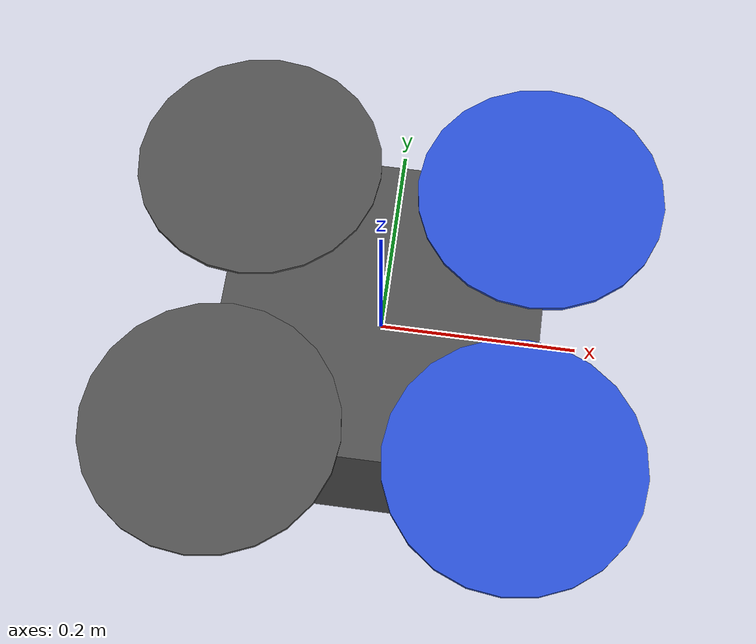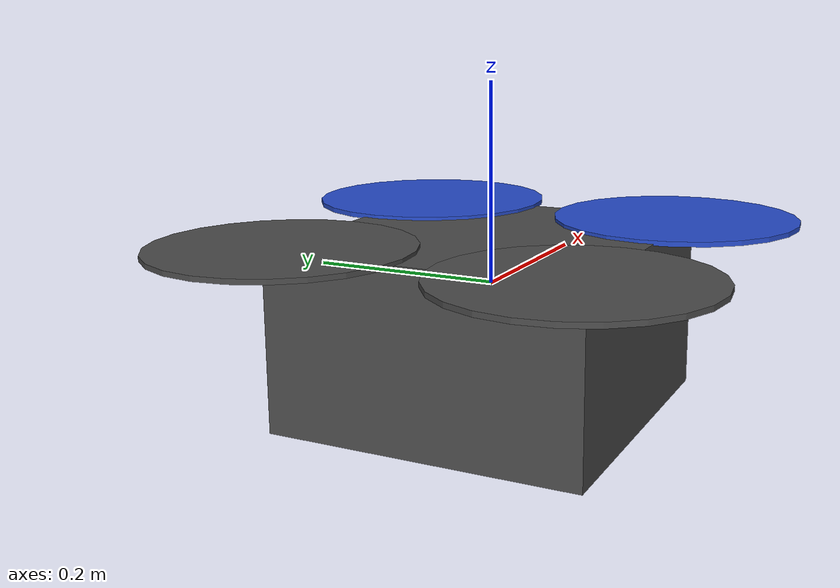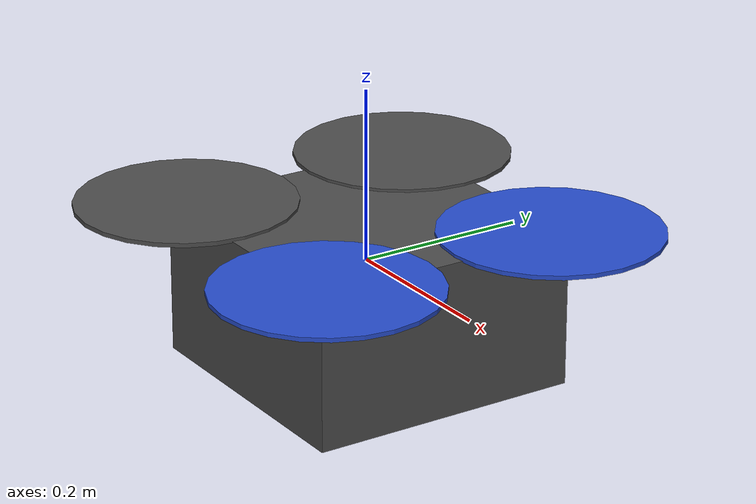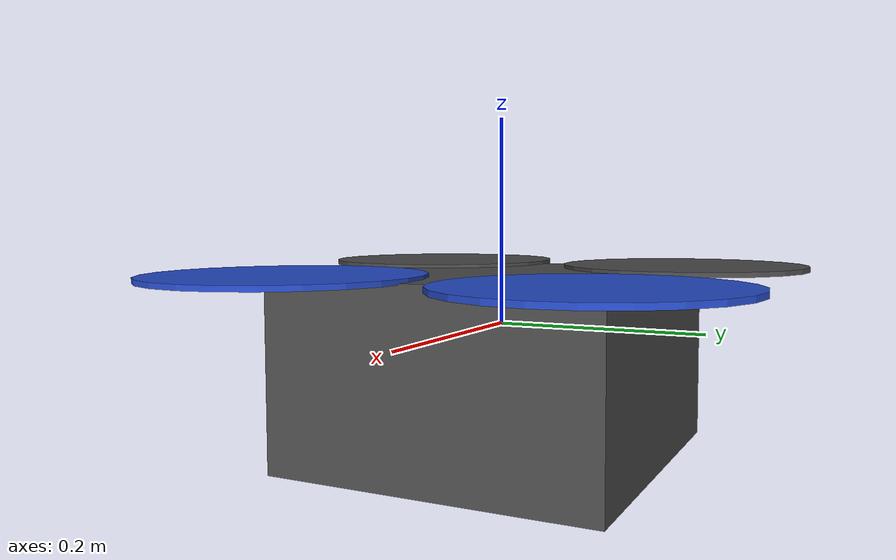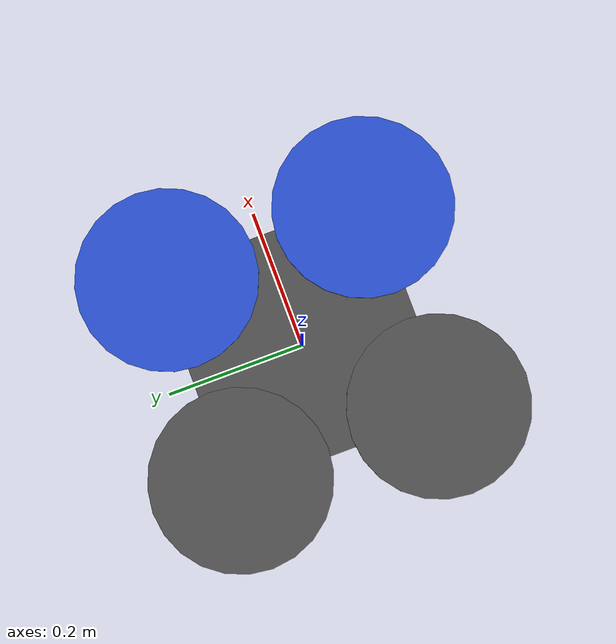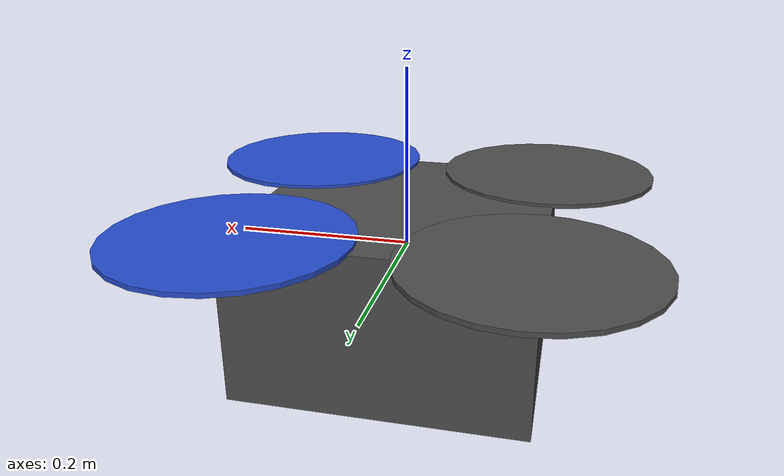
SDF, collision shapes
<?xml version="1.0" ?>
<sdf version="1.5">
  <model name='01_solo_Front_Down_D435i'>
    <include>
      <uri>model://solo</uri>
    </include>

   <include>
      <uri>model://realsense_camera</uri>
      <pose>0.14 0 0 1.57 0 1.57</pose>
    </include>

    <joint name="realsense_camera_joint" type="fixed">
      <child>realsense_camera::camera_link</child>
      <parent>solo::base_link</parent>
      <axis>
        <xyz>0 0 0</xyz>
        <limit>
          <upper>0</upper>
          <lower>0</lower>
        </limit>
      </axis>
    </joint>

    <!-- Repeating the use of the same Gazebo plugin can result in identical data between two models,
    so the second D435i camera was actually simulated using Kinect's plugin.-->

    <include>
      <uri>model://realsense_camera_2</uri>
      <pose>0 0 -0.05 3.14 0 1.57</pose>
    </include>

    <joint name="realsense_camera_joint_2" type="fixed">
      <child>realsense_camera_2::camera_link</child>
      <parent>solo::base_link</parent>
      <axis>
        <xyz>0 0 0</xyz>
        <limit>
          <upper>0</upper>
          <lower>0</lower>
        </limit>
      </axis>
    </joint>

  </model>
</sdf>

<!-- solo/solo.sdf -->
<sdf version='1.5'>
  <model name='solo'>
    <!-- Solo body -->
    <link name='base_link'>
      <pose>0 0 0 0 0 0</pose>
      <inertial>
        <pose>0 0 0 0 0 0</pose>
        <mass>1.47</mass>
        <inertia>
          <ixx>0.011</ixx>
          <ixy>0</ixy>
          <ixz>0</ixz>
          <iyy>0.015</iyy>
          <iyz>0</iyz>
          <izz>0.021</izz>
        </inertia>
      </inertial>
      <collision name='base_link_inertia_collision'>
        <pose>0 0 -0.04 0 0 0</pose>
        <geometry>
          <box>
            <size>0.32 0.32 0.18</size>
          </box>
        </geometry>
        <surface>
          <contact>
            <ode>
              <min_depth>0.001</min_depth>
              <max_vel>0</max_vel>
            </ode>
          </contact>
          <friction>
            <ode/>
          </friction>
        </surface>
      </collision>
      <visual name='base_link_inertia_visual'>
        <pose>0 0 0 0 0 0</pose>
        <geometry>
          <mesh>
            <scale>1 1 1</scale>
            <uri>model://solo/meshes/solo.stl</uri>
          </mesh>
        </geometry>
        <material>
          <script>
            <name>Gazebo/DarkGrey</name>
            <uri>file://media/materials/scripts/gazebo.material</uri>
          </script>
        </material>
      </visual>
      <gravity>1</gravity>
      <velocity_decay/>
      <self_collide>0</self_collide>
    </link>
    <link name='imu_link'>
      <pose>0 0 0 0 0 0</pose>
      <inertial>
        <pose>0 0 0 0 0 0</pose>
        <mass>0.015</mass>
        <inertia>
          <ixx>1e-05</ixx>
          <ixy>0</ixy>
          <ixz>0</ixz>
          <iyy>1e-05</iyy>
          <iyz>0</iyz>
          <izz>1e-05</izz>
        </inertia>
      </inertial>
    </link>
    <joint name='imu_joint' type='revolute'>
      <child>imu_link</child>
      <parent>base_link</parent>
      <axis>
        <xyz>1 0 0</xyz>
        <limit>
          <lower>0</lower>
          <upper>0</upper>
          <effort>0</effort>
          <velocity>0</velocity>
        </limit>
        <dynamics>
          <spring_reference>0</spring_reference>
          <spring_stiffness>0</spring_stiffness>
        </dynamics>
        <use_parent_model_frame>1</use_parent_model_frame>
      </axis>
    </joint>
    <link name='rotor_0'>
      <pose>0.14745 -0.14525 0.051 0 0 0</pose>
      <inertial>
        <pose>0 0 0 0 0 0</pose>
        <mass>0.005</mass>
        <inertia>
          <ixx>9.75e-07</ixx>
          <ixy>0</ixy>
          <ixz>0</ixz>
          <iyy>0.000273104</iyy>
          <iyz>0</iyz>
          <izz>0.000274004</izz>
        </inertia>
      </inertial>
      <collision name='rotor_0_collision'>
        <pose>0 0 0 0 0 0</pose>
        <geometry>
          <cylinder>
            <length>0.005</length>
            <radius>0.128</radius>
          </cylinder>
        </geometry>
        <surface>
          <contact>
            <ode/>
          </contact>
          <friction>
            <ode/>
          </friction>
        </surface>
      </collision>
      <visual name='rotor_0_visual'>
        <pose>-0.14745 -0.14525 -0.051 0 0 0</pose>
        <geometry>
          <mesh>
            <scale>1 1 1</scale>
            <uri>model://solo/meshes/solo_prop_ccw.stl</uri>
          </mesh>
        </geometry>
        <material>
          <script>
            <name>Gazebo/Blue</name>
            <uri>file://media/materials/scripts/gazebo.material</uri>
          </script>
        </material>
      </visual>
      <gravity>1</gravity>
      <velocity_decay/>
      <self_collide>0</self_collide>
    </link>
    <joint name='rotor_0_joint' type='revolute'>
      <child>rotor_0</child>
      <parent>base_link</parent>
      <axis>
        <xyz>0 0 1</xyz>
        <limit>
          <lower>-1e+16</lower>
          <upper>1e+16</upper>
        </limit>
        <dynamics>
          <spring_reference>0</spring_reference>
          <spring_stiffness>0</spring_stiffness>
        </dynamics>
        <use_parent_model_frame>1</use_parent_model_frame>
      </axis>
    </joint>
    <link name='rotor_1'>
      <pose>-0.14745 0.14525 0.051 0 0 0</pose>
      <inertial>
        <pose>0 0 0 0 0 0</pose>
        <mass>0.005</mass>
        <inertia>
          <ixx>9.75e-07</ixx>
          <ixy>0</ixy>
          <ixz>0</ixz>
          <iyy>0.000273104</iyy>
          <iyz>0</iyz>
          <izz>0.000274004</izz>
        </inertia>
      </inertial>
      <collision name='rotor_1_collision'>
        <pose>0 0 0 0 0 0</pose>
        <geometry>
          <cylinder>
            <length>0.005</length>
            <radius>0.128</radius>
          </cylinder>
        </geometry>
        <surface>
          <contact>
            <ode/>
          </contact>
          <friction>
            <ode/>
          </friction>
        </surface>
      </collision>
      <visual name='rotor_1_visual'>
        <pose>-0.14745 -0.14525 -0.051 0 0 0</pose>
        <geometry>
          <mesh>
            <scale>1 1 1</scale>
            <uri>model://solo/meshes/solo_prop_ccw.stl</uri>
          </mesh>
        </geometry>
        <material>
          <script>
            <name>Gazebo/DarkGrey</name>
            <uri>file://media/materials/scripts/gazebo.material</uri>
          </script>
        </material>
      </visual>
      <gravity>1</gravity>
      <velocity_decay/>
      <self_collide>0</self_collide>
    </link>
    <joint name='rotor_1_joint' type='revolute'>
      <child>rotor_1</child>
      <parent>base_link</parent>
      <axis>
        <xyz>0 0 1</xyz>
        <limit>
          <lower>-1e+16</lower>
          <upper>1e+16</upper>
        </limit>
        <dynamics>
          <spring_reference>0</spring_reference>
          <spring_stiffness>0</spring_stiffness>
        </dynamics>
        <use_parent_model_frame>1</use_parent_model_frame>
      </axis>
    </joint>
    <link name='rotor_2'>
      <pose>0.14745 0.14525 0.051 0 0 0</pose>
      <inertial>
        <pose>0 0 0 0 0 0</pose>
        <mass>0.005</mass>
        <inertia>
          <ixx>9.75e-07</ixx>
          <ixy>0</ixy>
          <ixz>0</ixz>
          <iyy>0.000273104</iyy>
          <iyz>0</iyz>
          <izz>0.000274004</izz>
        </inertia>
      </inertial>
      <collision name='rotor_2_collision'>
        <pose>0 0 0 0 0 0</pose>
        <geometry>
          <cylinder>
            <length>0.005</length>
            <radius>0.128</radius>
          </cylinder>
        </geometry>
        <surface>
          <contact>
            <ode/>
          </contact>
          <friction>
            <ode/>
          </friction>
        </surface>
      </collision>
      <visual name='rotor_2_visual'>
        <pose>-0.14745 0.14525 -0.051 0 0 0</pose>
        <geometry>
          <mesh>
            <scale>1 1 1</scale>
            <uri>model://solo/meshes/solo_prop_cw.stl</uri>
          </mesh>
        </geometry>
        <material>
          <script>
            <name>Gazebo/Blue</name>
            <uri>file://media/materials/scripts/gazebo.material</uri>
          </script>
        </material>
      </visual>
      <gravity>1</gravity>
      <velocity_decay/>
      <self_collide>0</self_collide>
    </link>
    <joint name='rotor_2_joint' type='revolute'>
      <child>rotor_2</child>
      <parent>base_link</parent>
      <axis>
        <xyz>0 0 1</xyz>
        <limit>
          <lower>-1e+16</lower>
          <upper>1e+16</upper>
        </limit>
        <dynamics>
          <spring_reference>0</spring_reference>
          <spring_stiffness>0</spring_stiffness>
        </dynamics>
        <use_parent_model_frame>1</use_parent_model_frame>
      </axis>
    </joint>
    <link name='rotor_3'>
      <pose>-0.14745 -0.14525 0.051 0 0 0</pose>
      <inertial>
        <pose>0 0 0 0 0 0</pose>
        <mass>0.005</mass>
        <inertia>
          <ixx>9.75e-07</ixx>
          <ixy>0</ixy>
          <ixz>0</ixz>
          <iyy>0.000273104</iyy>
          <iyz>0</iyz>
          <izz>0.000274004</izz>
        </inertia>
      </inertial>
      <collision name='rotor_3_collision'>
        <pose>0 0 0 0 0 0</pose>
        <geometry>
          <cylinder>
            <length>0.005</length>
            <radius>0.128</radius>
          </cylinder>
        </geometry>
        <surface>
          <contact>
            <ode/>
          </contact>
          <friction>
            <ode/>
          </friction>
        </surface>
      </collision>
      <visual name='rotor_3_visual'>
        <pose>-0.14745 0.14525 -0.051 0 0 0</pose>
        <geometry>
          <mesh>
            <scale>1 1 1</scale>
            <uri>model://solo/meshes/solo_prop_cw.stl</uri>
          </mesh>
        </geometry>
        <material>
          <script>
            <name>Gazebo/DarkGrey</name>
            <uri>file://media/materials/scripts/gazebo.material</uri>
          </script>
        </material>
      </visual>
      <gravity>1</gravity>
      <velocity_decay/>
      <self_collide>0</self_collide>
    </link>
    <joint name='rotor_3_joint' type='revolute'>
      <child>rotor_3</child>
      <parent>base_link</parent>
      <axis>
        <xyz>0 0 1</xyz>
        <limit>
          <lower>-1e+16</lower>
          <upper>1e+16</upper>
        </limit>
        <dynamics>
          <spring_reference>0</spring_reference>
          <spring_stiffness>0</spring_stiffness>
        </dynamics>
        <use_parent_model_frame>1</use_parent_model_frame>
      </axis>
    </joint>
    <include>
      <uri>model://gps</uri>
      <pose>0 0 0 0 0 0</pose>
      <name>gps</name>
    </include>
    <joint name='gps_joint' type='fixed'>
      <child>gps::link</child>
      <parent>base_link</parent>
    </joint>

    <plugin name="gps" filename="libhector_gazebo_ros_gps.so">
      <updateRate>10.0</updateRate>
      <topicName>sensor_msgs/NavSatFix</topicName>
      <gaussianNoise>0.0 0.0 0.0</gaussianNoise>
      <offset>0 0 0</offset>
      <velocityGaussianNoise>0 0 0</velocityGaussianNoise>
      <frameId>gps::link</frameId>
    </plugin>

    <plugin name='rosbag' filename='libgazebo_multirotor_base_plugin.so'>
      <robotNamespace></robotNamespace>
      <linkName>base_link</linkName>
      <rotorVelocitySlowdownSim>10</rotorVelocitySlowdownSim>
    </plugin>
    <plugin name='front_right_motor_model' filename='libgazebo_motor_model.so'>
      <robotNamespace></robotNamespace>
      <jointName>rotor_0_joint</jointName>
      <linkName>rotor_0</linkName>
      <turningDirection>ccw</turningDirection>
      <timeConstantUp>0.0125</timeConstantUp>
      <timeConstantDown>0.025</timeConstantDown>
      <maxRotVelocity>1500</maxRotVelocity>
      <motorConstant>8.54858e-06</motorConstant>
      <momentConstant>0.06</momentConstant>
      <commandSubTopic>/gazebo/command/motor_speed</commandSubTopic>
      <motorNumber>0</motorNumber>
      <rotorDragCoefficient>0.000806428</rotorDragCoefficient>
      <rollingMomentCoefficient>1e-06</rollingMomentCoefficient>
      <motorSpeedPubTopic>/motor_speed/0</motorSpeedPubTopic>
      <rotorVelocitySlowdownSim>10</rotorVelocitySlowdownSim>
    </plugin>
    <plugin name='back_left_motor_model' filename='libgazebo_motor_model.so'>
      <robotNamespace></robotNamespace>
      <jointName>rotor_1_joint</jointName>
      <linkName>rotor_1</linkName>
      <turningDirection>ccw</turningDirection>
      <timeConstantUp>0.0125</timeConstantUp>
      <timeConstantDown>0.025</timeConstantDown>
      <maxRotVelocity>1500</maxRotVelocity>
      <motorConstant>8.54858e-06</motorConstant>
      <momentConstant>0.06</momentConstant>
      <commandSubTopic>/gazebo/command/motor_speed</commandSubTopic>
      <motorNumber>1</motorNumber>
      <rotorDragCoefficient>0.000806428</rotorDragCoefficient>
      <rollingMomentCoefficient>1e-06</rollingMomentCoefficient>
      <motorSpeedPubTopic>/motor_speed/1</motorSpeedPubTopic>
      <rotorVelocitySlowdownSim>10</rotorVelocitySlowdownSim>
    </plugin>
    <plugin name='front_left_motor_model' filename='libgazebo_motor_model.so'>
      <robotNamespace></robotNamespace>
      <jointName>rotor_2_joint</jointName>
      <linkName>rotor_2</linkName>
      <turningDirection>cw</turningDirection>
      <timeConstantUp>0.0125</timeConstantUp>
      <timeConstantDown>0.025</timeConstantDown>
      <maxRotVelocity>1500</maxRotVelocity>
      <motorConstant>8.54858e-06</motorConstant>
      <momentConstant>0.06</momentConstant>
      <commandSubTopic>/gazebo/command/motor_speed</commandSubTopic>
      <motorNumber>2</motorNumber>
      <rotorDragCoefficient>0.000806428</rotorDragCoefficient>
      <rollingMomentCoefficient>1e-06</rollingMomentCoefficient>
      <motorSpeedPubTopic>/motor_speed/2</motorSpeedPubTopic>
      <rotorVelocitySlowdownSim>10</rotorVelocitySlowdownSim>
    </plugin>
    <plugin name='back_right_motor_model' filename='libgazebo_motor_model.so'>
      <robotNamespace></robotNamespace>
      <jointName>rotor_3_joint</jointName>
      <linkName>rotor_3</linkName>
      <turningDirection>cw</turningDirection>
      <timeConstantUp>0.0125</timeConstantUp>
      <timeConstantDown>0.025</timeConstantDown>
      <maxRotVelocity>1500</maxRotVelocity>
      <motorConstant>8.54858e-06</motorConstant>
      <momentConstant>0.06</momentConstant>
      <commandSubTopic>/gazebo/command/motor_speed</commandSubTopic>
      <motorNumber>3</motorNumber>
      <rotorDragCoefficient>0.000806428</rotorDragCoefficient>
      <rollingMomentCoefficient>1e-06</rollingMomentCoefficient>
      <motorSpeedPubTopic>/motor_speed/3</motorSpeedPubTopic>
      <rotorVelocitySlowdownSim>10</rotorVelocitySlowdownSim>
    </plugin>
    <plugin name='groundtruth_plugin' filename='libgazebo_groundtruth_plugin.so'>
      <robotNamespace/>
    </plugin>
    <plugin name='magnetometer_plugin' filename='libgazebo_magnetometer_plugin.so'>
      <robotNamespace/>
      <pubRate>100</pubRate>
      <noiseDensity>0.0004</noiseDensity>
      <randomWalk>6.4e-06</randomWalk>
      <biasCorrelationTime>600</biasCorrelationTime>
      <magTopic>/mag</magTopic>
    </plugin>
    <plugin name='barometer_plugin' filename='libgazebo_barometer_plugin.so'>
      <robotNamespace/>
      <pubRate>50</pubRate>
      <baroTopic>/baro</baroTopic>
    </plugin>
    <plugin name='mavlink_interface' filename='libgazebo_mavlink_interface.so'>
      <robotNamespace/>
      <imuSubTopic>/imu</imuSubTopic>
      <gpsSubTopic>/gps</gpsSubTopic>
      <magSubTopic>/mag</magSubTopic>
      <baroSubTopic>/baro</baroSubTopic>
      <mavlink_addr>INADDR_ANY</mavlink_addr>
      <mavlink_udp_port>14560</mavlink_udp_port>
      <serialEnabled>false</serialEnabled>
      <serialDevice>/dev/ttyACM0</serialDevice>
      <baudRate>921600</baudRate>
      <qgc_addr>INADDR_ANY</qgc_addr>
      <qgc_udp_port>14550</qgc_udp_port>
      <hil_mode>false</hil_mode>
      <hil_state_level>false</hil_state_level>
      <enable_lockstep>true</enable_lockstep>
      <use_tcp>true</use_tcp>
      <motorSpeedCommandPubTopic>/gazebo/command/motor_speed</motorSpeedCommandPubTopic>
      <control_channels>
        <channel name='rotor1'>
          <input_index>0</input_index>
          <input_offset>0</input_offset>
          <input_scaling>1200</input_scaling>
          <zero_position_disarmed>0</zero_position_disarmed>
          <zero_position_armed>100</zero_position_armed>
          <joint_control_type>velocity</joint_control_type>
        </channel>
        <channel name='rotor2'>
          <input_index>1</input_index>
          <input_offset>0</input_offset>
          <input_scaling>1200</input_scaling>
          <zero_position_disarmed>0</zero_position_disarmed>
          <zero_position_armed>100</zero_position_armed>
          <joint_control_type>velocity</joint_control_type>
        </channel>
        <channel name='rotor3'>
          <input_index>2</input_index>
          <input_offset>0</input_offset>
          <input_scaling>1200</input_scaling>
          <zero_position_disarmed>0</zero_position_disarmed>
          <zero_position_armed>100</zero_position_armed>
          <joint_control_type>velocity</joint_control_type>
        </channel>
        <channel name='rotor4'>
          <input_index>3</input_index>
          <input_offset>0</input_offset>
          <input_scaling>1200</input_scaling>
          <zero_position_disarmed>0</zero_position_disarmed>
          <zero_position_armed>100</zero_position_armed>
          <joint_control_type>velocity</joint_control_type>
        </channel>
      </control_channels>
    </plugin>
    <static>0</static>
    <plugin name='gazebo_imu_plugin' filename='libgazebo_imu_plugin.so'>
      <robotNamespace></robotNamespace>
      <linkName>imu_link</linkName>
      <imuTopic>/imu</imuTopic>
      <gyroscopeNoiseDensity>0.0003394</gyroscopeNoiseDensity>
      <gyroscopeRandomWalk>3.8785e-05</gyroscopeRandomWalk>
      <gyroscopeBiasCorrelationTime>1000.0</gyroscopeBiasCorrelationTime>
      <gyroscopeTurnOnBiasSigma>0.0087</gyroscopeTurnOnBiasSigma>
      <accelerometerNoiseDensity>0.004</accelerometerNoiseDensity>
      <accelerometerRandomWalk>0.006</accelerometerRandomWalk>
      <accelerometerBiasCorrelationTime>300.0</accelerometerBiasCorrelationTime>
      <accelerometerTurnOnBiasSigma>0.196</accelerometerTurnOnBiasSigma>
    </plugin>
  </model>
</sdf>

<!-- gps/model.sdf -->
<sdf version="1.6">
  <model name="gps">
    <link name="link">
      <pose>0 0 0 0 0 0</pose>
      <inertial>
        <pose>0 0 0 0 0 0</pose>
        <mass>0.015</mass>
        <inertia>
          <ixx>1e-05</ixx>
          <ixy>0</ixy>
          <ixz>0</ixz>
          <iyy>1e-05</iyy>
          <iyz>0</iyz>
          <izz>1e-05</izz>
        </inertia>
      </inertial>
      <visual name="visual">
        <geometry>
          <cylinder>
            <radius>0.01</radius>
            <length>0.002</length>
          </cylinder>
        </geometry>
        <material>
          <script>
            <name>Gazebo/Black</name>
            <uri>file://usr/share/gz/gz-sim8/media/gazebo.material</uri>
          </script>
        </material>
      </visual>
      <sensor name="gps" type="gps">
        <pose>0 0 0 0 0 0</pose>
        <update_rate>5.0</update_rate>
        <always_on>true</always_on>
        <visualize>false</visualize>
        <!-- GpsSensor noise currently not used -->
        <plugin name="gps_plugin" filename="libgazebo_gps_plugin.so">
          <robotNamespace></robotNamespace>
          <gpsNoise>true</gpsNoise>
          <gpsXYRandomWalk>2.0</gpsXYRandomWalk>
          <gpsZRandomWalk>4.0</gpsZRandomWalk>
          <gpsXYNoiseDensity>2.0e-4</gpsXYNoiseDensity>
          <gpsZNoiseDensity>4.0e-4</gpsZNoiseDensity>
          <gpsVXYNoiseDensity>0.2</gpsVXYNoiseDensity>
          <gpsVZNoiseDensity>0.4</gpsVZNoiseDensity>
        </plugin>
      </sensor>
    </link>
  </model>
</sdf>

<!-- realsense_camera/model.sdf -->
<sdf version="1.6">
  <model name="realsense_camera">
    <link name="camera_link">
      <inertial>
        <mass>0.0564</mass>
        <inertia>
          <ixx>4.1e-05</ixx>
          <ixy>0</ixy>
          <ixz>0</ixz>
          <iyy>5.9e-06</iyy>
          <iyz>0</iyz>
          <izz>5.9e-06</izz>
        </inertia>
      </inertial>
      <self_collide>0</self_collide>
      <kinematic>0</kinematic>
      <gravity>1</gravity>
      <visual name="visual">
        <geometry>
         <mesh>
            <uri>model://realsense_camera/meshes/realsense_d435.stl</uri>
          </mesh>
        </geometry>
      </visual>
      <collision name='collision'>
        <pose>0 0 0 0 0 0</pose>
        <geometry>
          <box>
            <size>0.02505 0.090 0.025</size>
          </box>
        </geometry>
        <surface>
          <friction>
            <ode>
              <mu>1</mu>
              <mu2>1</mu2>
              <fdir1>0 0 0</fdir1>
              <slip1>0</slip1>
              <slip2>0</slip2>
            </ode>
          </friction>
          <bounce>
            <restitution_coefficient>0</restitution_coefficient>
            <threshold>1e+06</threshold>
          </bounce>
          <contact>
            <collide_without_contact>0</collide_without_contact>
            <collide_without_contact_bitmask>1</collide_without_contact_bitmask>
            <collide_bitmask>1</collide_bitmask>
            <ode>
              <soft_cfm>0</soft_cfm>
              <soft_erp>0.2</soft_erp>
              <kp>1e+13</kp>
              <kd>1</kd>
              <max_vel>0.01</max_vel>
              <min_depth>0</min_depth>
            </ode>
            <bullet>
              <split_impulse>1</split_impulse>
              <split_impulse_penetration_threshold>-0.01</split_impulse_penetration_threshold>
              <soft_cfm>0</soft_cfm>
              <soft_erp>0.2</soft_erp>
              <kp>1e+13</kp>
              <kd>1</kd>
            </bullet>
          </contact>
        </surface>
      </collision>
    </link>

    <link name="camera_color_frame">
      <pose>0.0325 0 0 3.14 -1.57 1.57</pose>
      <inertial>
        <pose frame=''>0 0 0 0 -0 0</pose>
        <mass>0.0015</mass>
        <inertia>
          <ixx>1e-06</ixx>
          <ixy>0</ixy>
          <ixz>0</ixz>
          <iyy>1e-06</iyy>
          <iyz>0</iyz>
          <izz>1e-06</izz>
        </inertia>
      </inertial>
      <sensor name="color" type="camera">
        <camera name="color">
          <horizontal_fov>1.571</horizontal_fov>
          <image>
            <width>640</width>
            <height>480</height>
            <format>RGB_INT8</format>
          </image>
          <clip>
            <near>0.1</near>
            <far>100</far>
          </clip>
          <noise>
            <type>gaussian</type>
            <mean>0.0</mean>
            <stddev>0.007</stddev>
          </noise>
        </camera>
        <always_on>1</always_on>
        <update_rate>30</update_rate>
        <visualize>1</visualize>
      </sensor>
    </link>
    <joint name='camera_color_joint' type='revolute'>
      <child>camera_color_frame</child>
      <parent>camera_link</parent>
      <axis>
        <xyz>1 0 0</xyz>
        <limit>
          <lower>0</lower>
          <upper>0</upper>
          <effort>0</effort>
          <velocity>0</velocity>
        </limit>
        <dynamics>
          <spring_reference>0</spring_reference>
          <spring_stiffness>0</spring_stiffness>
        </dynamics>
        <use_parent_model_frame>1</use_parent_model_frame>
      </axis>
    </joint>

    <link name="camera_ired1_frame">
      <pose>0.02 0 0 3.14 -1.57 1.57</pose>
      <inertial>
        <pose frame=''>0 0 0 0 -0 0</pose>
        <mass>0.0015</mass>
        <inertia>
          <ixx>1e-06</ixx>
          <ixy>0</ixy>
          <ixz>0</ixz>
          <iyy>1e-06</iyy>
          <iyz>0</iyz>
          <izz>1e-06</izz>
        </inertia>
      </inertial>
      <sensor name="ired1" type="camera">
        <camera name="ired1">
          <horizontal_fov>1.571</horizontal_fov>
          <image>
            <width>640</width>
            <height>480</height>
            <format>L_INT8</format>
          </image>
          <clip>
            <near>0.1</near>
            <far>100</far>
          </clip>
          <noise>
            <type>gaussian</type>
            <mean>0.0</mean>
            <stddev>0.007</stddev>
          </noise>
        </camera>
        <always_on>1</always_on>
        <update_rate>30</update_rate>
        <visualize>0</visualize>
      </sensor>
    </link>
    <joint name='camera_ired1_joint' type='revolute'>
      <child>camera_ired1_frame</child>
      <parent>camera_link</parent>
      <axis>
        <xyz>1 0 0</xyz>
        <limit>
          <lower>0</lower>
          <upper>0</upper>
          <effort>0</effort>
          <velocity>0</velocity>
        </limit>
        <dynamics>
          <spring_reference>0</spring_reference>
          <spring_stiffness>0</spring_stiffness>
        </dynamics>
        <use_parent_model_frame>1</use_parent_model_frame>
      </axis>
    </joint>

    <link name="camera_ired2_frame">
      <pose>-0.03 0 0 3.14 -1.57 1.57</pose>
      <inertial>
        <pose frame=''>0 0 0 0 -0 0</pose>
        <mass>0.0015</mass>
        <inertia>
          <ixx>1e-06</ixx>
          <ixy>0</ixy>
          <ixz>0</ixz>
          <iyy>1e-06</iyy>
          <iyz>0</iyz>
          <izz>1e-06</izz>
        </inertia>
      </inertial>
      <sensor name="ired2" type="camera">
        <camera name="ired2">
          <horizontal_fov>1.571</horizontal_fov>
          <image>
            <width>640</width>
            <height>480</height>
            <format>L_INT8</format>
          </image>
          <clip>
            <near>0.1</near>
            <far>100</far>
          </clip>
          <noise>
            <type>gaussian</type>
            <mean>0.0</mean>
            <stddev>0.007</stddev>
          </noise>
        </camera>
        <always_on>1</always_on>
        <update_rate>30</update_rate>
        <visualize>0</visualize>
      </sensor>
    </link>
    <joint name='camera_ired2_joint' type='revolute'>
      <child>camera_ired2_frame</child>
      <parent>camera_link</parent>
      <axis>
        <xyz>1 0 0</xyz>
        <limit>
          <lower>0</lower>
          <upper>0</upper>
          <effort>0</effort>
          <velocity>0</velocity>
        </limit>
        <dynamics>
          <spring_reference>0</spring_reference>
          <spring_stiffness>0</spring_stiffness>
        </dynamics>
        <use_parent_model_frame>1</use_parent_model_frame>
      </axis>
    </joint>

    <link name="camera_depth_frame">
      <pose>0.0325 0 0 3.14 -1.57 1.57</pose>
      <inertial>
        <pose frame=''>0 0 0 0 -0 0</pose>
        <mass>0.0015</mass>
        <inertia>
          <ixx>1e-06</ixx>
          <ixy>0</ixy>
          <ixz>0</ixz>
          <iyy>1e-06</iyy>
          <iyz>0</iyz>
          <izz>1e-06</izz>
        </inertia>
      </inertial>
      <sensor name="depth" type="depth">
        <camera name="depth">
          <horizontal_fov>1.571</horizontal_fov>
          <image>
            <width>640</width>
            <height>480</height>
          </image>
          <clip>
            <near>0.1</near>
            <far>100</far>
          </clip>
          <noise>
            <type>gaussian</type>
            <mean>0.0</mean>
            <stddev>0.007</stddev>
          </noise>
        </camera>
        <always_on>1</always_on>
        <update_rate>30</update_rate>
        <visualize>0</visualize>

      </sensor>
    </link>
    <joint name='camera_depth_joint' type='revolute'>
      <child>camera_depth_frame</child>
      <parent>camera_link</parent>
      <axis>
        <xyz>1 0 0</xyz>
        <limit>
          <lower>0</lower>
          <upper>0</upper>
          <effort>0</effort>
          <velocity>0</velocity>
        </limit>
        <dynamics>
          <spring_reference>0</spring_reference>
          <spring_stiffness>0</spring_stiffness>
        </dynamics>
        <use_parent_model_frame>1</use_parent_model_frame>
      </axis>
    </joint>

    <plugin name="d435i" filename="librealsense_gazebo_plugin.so">
       <depthUpdateRate>30.0</depthUpdateRate>
       <colorUpdateRate>30.0</colorUpdateRate>
       <infraredUpdateRate>15.0</infraredUpdateRate>
       <depthTopicName>depth/image_raw</depthTopicName>
       <depthCameraInfoTopicName>depth/camera_info</depthCameraInfoTopicName>
       <colorTopicName>color/image_raw</colorTopicName>
       <colorCameraInfoTopicName>color/camera_info</colorCameraInfoTopicName>
       <infrared1TopicName>infra1/image_raw</infrared1TopicName>
       <infrared1CameraInfoTopicName>infra1/camera_info</infrared1CameraInfoTopicName>
       <infrared2TopicName>infra2/image_raw</infrared2TopicName>
       <infrared2CameraInfoTopicName>infra2/camera_info</infrared2CameraInfoTopicName>
       <colorOpticalframeName>camera_color_frame</colorOpticalframeName>
       <depthOpticalframeName>camera_depth_frame</depthOpticalframeName>
       <infrared1OpticalframeName>camera_ired1_frame</infrared1OpticalframeName>
       <infrared2OpticalframeName>camera_ired2_frame</infrared2OpticalframeName>
       <rangeMinDepth>0.2</rangeMinDepth>
       <rangeMaxDepth>10.0</rangeMaxDepth>
       <pointCloud>false</pointCloud>
       <pointCloudTopicName>depth/color/points</pointCloudTopicName>
       <pointCloudCutoff>0.25</pointCloudCutoff>
       <pointCloudCutoffMax>9.0</pointCloudCutoffMax>
     </plugin>

  </model>
</sdf>

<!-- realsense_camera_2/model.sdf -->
<sdf version="1.6">
  <model name="realsense_camera_2">
    <link name="camera_link">
      <inertial>
        <mass>0.0564</mass>
        <inertia>
          <ixx>4.1e-05</ixx>
          <ixy>0</ixy>
          <ixz>0</ixz>
          <iyy>5.9e-06</iyy>
          <iyz>0</iyz>
          <izz>5.9e-06</izz>
        </inertia>
      </inertial>
      <self_collide>0</self_collide>
      <kinematic>0</kinematic>
      <gravity>1</gravity>
      <visual name="visual">
        <geometry>
         <mesh>
            <uri>model://realsense_camera_2/meshes/realsense_d435.stl</uri>
          </mesh>
        </geometry>
      </visual>
      <collision name='collision'>
        <pose>0 0 0 0 0 0</pose>
        <geometry>
          <box>
            <size>0.02505 0.090 0.025</size>
          </box>
        </geometry>
        <surface>
          <friction>
            <ode>
              <mu>1</mu>
              <mu2>1</mu2>
              <fdir1>0 0 0</fdir1>
              <slip1>0</slip1>
              <slip2>0</slip2>
            </ode>
          </friction>
          <bounce>
            <restitution_coefficient>0</restitution_coefficient>
            <threshold>1e+06</threshold>
          </bounce>
          <contact>
            <collide_without_contact>0</collide_without_contact>
            <collide_without_contact_bitmask>1</collide_without_contact_bitmask>
            <collide_bitmask>1</collide_bitmask>
            <ode>
              <soft_cfm>0</soft_cfm>
              <soft_erp>0.2</soft_erp>
              <kp>1e+13</kp>
              <kd>1</kd>
              <max_vel>0.01</max_vel>
              <min_depth>0</min_depth>
            </ode>
            <bullet>
              <split_impulse>1</split_impulse>
              <split_impulse_penetration_threshold>-0.01</split_impulse_penetration_threshold>
              <soft_cfm>0</soft_cfm>
              <soft_erp>0.2</soft_erp>
              <kp>1e+13</kp>
              <kd>1</kd>
            </bullet>
          </contact>
        </surface>
      </collision>
    </link>

    <link name="camera_color_frame">
      <pose>0.0325 0 0 3.14 -1.57 1.57</pose>
      <inertial>
        <pose frame=''>0 0 0 0 -0 0</pose>
        <mass>0.0015</mass>
        <inertia>
          <ixx>1e-06</ixx>
          <ixy>0</ixy>
          <ixz>0</ixz>
          <iyy>1e-06</iyy>
          <iyz>0</iyz>
          <izz>1e-06</izz>
        </inertia>
      </inertial>
      <sensor name="color" type="camera">
        <camera name="color">
          <horizontal_fov>1.211</horizontal_fov>
          <image>
            <width>640</width>
            <height>480</height>
            <format>B8G8R8</format>
          </image>
          <clip>
            <near>0.1</near>
            <far>100</far>
          </clip>
          <noise>
            <type>gaussian</type>
            <mean>0.0</mean>
            <stddev>0.007</stddev>
          </noise>
        </camera>
        <always_on>1</always_on>
        <update_rate>30</update_rate>
        <visualize>1</visualize>
      </sensor>
    </link>
    <joint name='camera_color_joint' type='revolute'>
      <child>camera_color_frame</child>
      <parent>camera_link</parent>
      <axis>
        <xyz>1 0 0</xyz>
        <limit>
          <lower>0</lower>
          <upper>0</upper>
          <effort>0</effort>
          <velocity>0</velocity>
        </limit>
        <dynamics>
          <spring_reference>0</spring_reference>
          <spring_stiffness>0</spring_stiffness>
        </dynamics>
        <use_parent_model_frame>1</use_parent_model_frame>
      </axis>
    </joint>

    <link name="camera_depth_frame">
      <pose>0.0325 0 0 3.14 -1.57 1.57</pose>
      <inertial>
        <pose frame=''>0 0 0 0 -0 0</pose>
        <mass>0.0015</mass>
        <inertia>
          <ixx>1e-06</ixx>
          <ixy>0</ixy>
          <ixz>0</ixz>
          <iyy>1e-06</iyy>
          <iyz>0</iyz>
          <izz>1e-06</izz>
        </inertia>
      </inertial>
      <sensor name="depth" type="depth">
        <camera name="depth">
          <horizontal_fov>1.571</horizontal_fov>
          <image>
            <width>640</width>
            <height>480</height>
          </image>
          <clip>
            <near>0.1</near>
            <far>100</far>
          </clip>
          <noise>
            <type>gaussian</type>
            <mean>0.0</mean>
            <stddev>0.007</stddev>
          </noise>
        </camera>
        <always_on>1</always_on>
        <update_rate>30</update_rate>
        <visualize>0</visualize>

        <plugin name="camera_plugin" filename="libgazebo_ros_openni_kinect.so">
          <baseline>0.2</baseline>
          <alwaysOn>true</alwaysOn>
          <updateRate>30.0</updateRate>
          <cameraName>d435i_2</cameraName>
          <imageTopicName>/d435i_2/color/image_raw</imageTopicName>
          <cameraInfoTopicName>/d435i_2/color/camera_info</cameraInfoTopicName>
          <depthImageTopicName>/d435i_2/depth/image_raw</depthImageTopicName>
          <depthImageCameraInfoTopicName>/d435i_2/depth/camera_info</depthImageCameraInfoTopicName>
          <pointCloudTopicName>/d435i_2/camera/local_pointclouds</pointCloudTopicName>
          <frameName>/d435i_2_camera_link</frameName>
          <pointCloudCutoff>0.1</pointCloudCutoff>
          <pointCloudCutoffMax>10.0</pointCloudCutoffMax>
          <distortionK1>0</distortionK1>
          <distortionK2>0</distortionK2>
          <distortionK3>0</distortionK3>
          <distortionT1>0</distortionT1>
          <distortionT2>0</distortionT2>
          <CxPrime>0</CxPrime>
          <Cx>0</Cx>
          <Cy>0</Cy>
          <focalLength>319.934831</focalLength>
          <hackBaseline>0</hackBaseline>
        </plugin>
      </sensor>
    </link>

    <joint name='camera_depth_joint' type='revolute'>
      <child>camera_depth_frame</child>
      <parent>camera_link</parent>
      <axis>
        <xyz>1 0 0</xyz>
        <limit>
          <lower>0</lower>
          <upper>0</upper>
          <effort>0</effort>
          <velocity>0</velocity>
        </limit>
        <dynamics>
          <spring_reference>0</spring_reference>
          <spring_stiffness>0</spring_stiffness>
        </dynamics>
        <use_parent_model_frame>1</use_parent_model_frame>
      </axis>
    </joint>

  </model>
</sdf>
